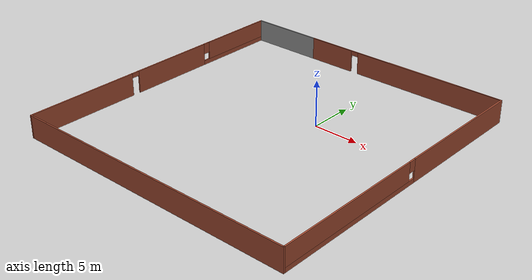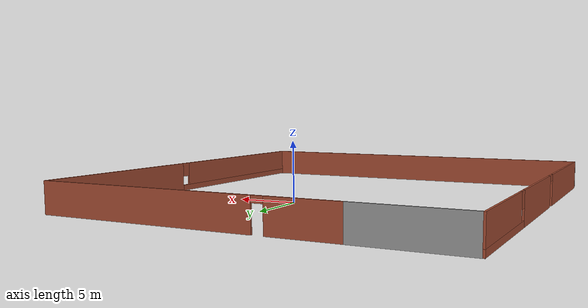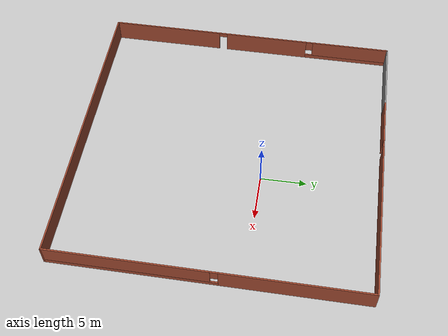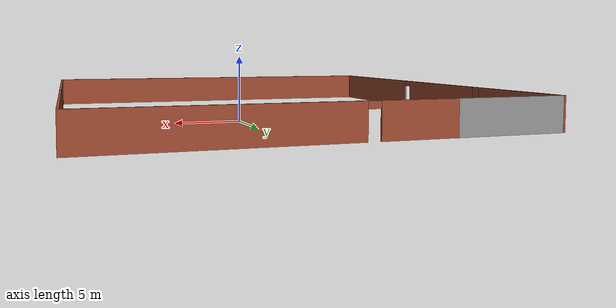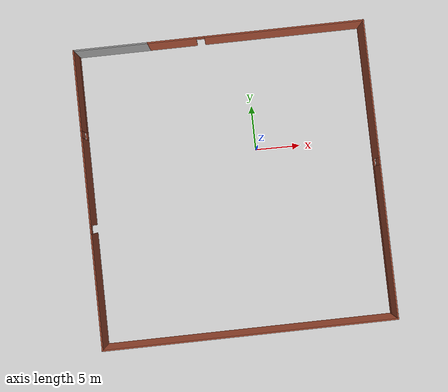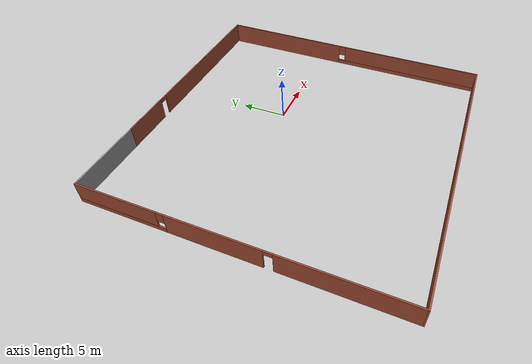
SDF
<?xml version='1.0'?>
<sdf version='1.7'>
  <model name='my_world.world'>
    <pose>-2.87252 -3.63734 0 0 -0 0</pose>
    <link name='Wall_10'>
      <collision name='Wall_10_Collision'>
        <geometry>
          <box>
            <size>32.25 0.15 2.5</size>
          </box>
        </geometry>
        <pose>0 0 1.25 0 -0 0</pose>
      </collision>
      <visual name='Wall_10_Visual'>
        <pose>0 0 1.25 0 -0 0</pose>
        <geometry>
          <box>
            <size>32.25 0.15 2.5</size>
          </box>
        </geometry>
        <material>
          <script>
            <uri>file://media/materials/scripts/gazebo.material</uri>
            <name>Gazebo/Bricks</name>
          </script>
          <ambient>1 1 1 1</ambient>
        </material>
        <meta>
          <layer>0</layer>
        </meta>
      </visual>
      <pose>0 -16.425 0 0 -0 3.14159</pose>
    </link>
    <link name='Wall_11'>
      <pose>-16.05 -0 0 0 -0 1.5708</pose>
      <visual name='Wall_11_Visual_0'>
        <pose>-10.1536 0 1.25 0 -0 0</pose>
        <geometry>
          <box>
            <size>12.6929 0.15 2.5</size>
          </box>
        </geometry>
        <material>
          <script>
            <uri>file://media/materials/scripts/gazebo.material</uri>
            <name>Gazebo/Bricks</name>
          </script>
          <ambient>1 1 1 1</ambient>
        </material>
        <meta>
          <layer>0</layer>
        </meta>
      </visual>
      <collision name='Wall_11_Collision_0'>
        <geometry>
          <box>
            <size>12.6929 0.15 2.5</size>
          </box>
        </geometry>
        <pose>-10.1536 0 1.25 0 -0 0</pose>
      </collision>
      <visual name='Wall_11_Visual_1'>
        <pose>1.91992 0 1.25 0 -0 0</pose>
        <geometry>
          <box>
            <size>9.65406 0.15 2.5</size>
          </box>
        </geometry>
        <material>
          <script>
            <uri>file://media/materials/scripts/gazebo.material</uri>
            <name>Gazebo/Bricks</name>
          </script>
          <ambient>1 1 1 1</ambient>
        </material>
        <meta>
          <layer>0</layer>
        </meta>
      </visual>
      <collision name='Wall_11_Collision_1'>
        <geometry>
          <box>
            <size>9.65406 0.15 2.5</size>
          </box>
        </geometry>
        <pose>1.91992 0 1.25 0 -0 0</pose>
      </collision>
      <visual name='Wall_11_Visual_2'>
        <pose>11.6235 0 0.25 0 -0 0</pose>
        <geometry>
          <box>
            <size>9.75305 0.15 0.5</size>
          </box>
        </geometry>
        <material>
          <script>
            <uri>file://media/materials/scripts/gazebo.material</uri>
            <name>Gazebo/Bricks</name>
          </script>
          <ambient>1 1 1 1</ambient>
        </material>
        <meta>
          <layer>0</layer>
        </meta>
      </visual>
      <collision name='Wall_11_Collision_2'>
        <geometry>
          <box>
            <size>9.75305 0.15 0.5</size>
          </box>
        </geometry>
        <pose>11.6235 0 0.25 0 -0 0</pose>
      </collision>
      <visual name='Wall_11_Visual_3'>
        <pose>12.0235 0 1.5 0 -0 0</pose>
        <geometry>
          <box>
            <size>8.95306 0.15 2</size>
          </box>
        </geometry>
        <material>
          <script>
            <uri>file://media/materials/scripts/gazebo.material</uri>
            <name>Gazebo/Bricks</name>
          </script>
          <ambient>1 1 1 1</ambient>
        </material>
        <meta>
          <layer>0</layer>
        </meta>
      </visual>
      <collision name='Wall_11_Collision_3'>
        <geometry>
          <box>
            <size>8.95306 0.15 2</size>
          </box>
        </geometry>
        <pose>12.0235 0 1.5 0 -0 0</pose>
      </collision>
      <visual name='Wall_11_Visual_4'>
        <pose>7.14694 0 1.9 0 -0 0</pose>
        <geometry>
          <box>
            <size>0.8 0.15 1.2</size>
          </box>
        </geometry>
        <material>
          <script>
            <uri>file://media/materials/scripts/gazebo.material</uri>
            <name>Gazebo/Bricks</name>
          </script>
          <ambient>1 1 1 1</ambient>
        </material>
        <meta>
          <layer>0</layer>
        </meta>
      </visual>
      <collision name='Wall_11_Collision_4'>
        <geometry>
          <box>
            <size>0.8 0.15 1.2</size>
          </box>
        </geometry>
        <pose>7.14694 0 1.9 0 -0 0</pose>
      </collision>
      <visual name='Wall_11_Visual_5'>
        <pose>-3.35711 0 2.25 0 -0 0</pose>
        <geometry>
          <box>
            <size>0.9 0.15 0.5</size>
          </box>
        </geometry>
        <material>
          <script>
            <uri>file://media/materials/scripts/gazebo.material</uri>
            <name>Gazebo/Bricks</name>
          </script>
          <ambient>1 1 1 1</ambient>
        </material>
        <meta>
          <layer>0</layer>
        </meta>
      </visual>
      <collision name='Wall_11_Collision_5'>
        <geometry>
          <box>
            <size>0.9 0.15 0.5</size>
          </box>
        </geometry>
        <pose>-3.35711 0 2.25 0 -0 0</pose>
      </collision>
    </link>
    <link name='Wall_12'>
      <collision name='Wall_12_Collision'>
        <geometry>
          <box>
            <size>8.25 0.15 2.5</size>
          </box>
        </geometry>
        <pose>0 0 1.25 0 -0 0</pose>
      </collision>
      <visual name='Wall_12_Visual'>
        <pose>0 0 1.25 0 -0 0</pose>
        <geometry>
          <box>
            <size>8.25 0.15 2.5</size>
          </box>
        </geometry>
        <material>
          <script>
            <uri>file://media/materials/scripts/gazebo.material</uri>
            <name>Gazebo/Grey</name>
          </script>
          <ambient>1 1 1 1</ambient>
        </material>
        <meta>
          <layer>0</layer>
        </meta>
      </visual>
      <pose>-12 16.425 0 0 -0 0</pose>
    </link>
    <link name='Wall_8'>
      <pose>4.125 16.425 0 0 -0 0</pose>
      <visual name='Wall_8_Visual_0'>
        <pose>-9.29459 0 1.25 0 -0 0</pose>
        <geometry>
          <box>
            <size>5.41081 0.15 2.5</size>
          </box>
        </geometry>
        <material>
          <script>
            <uri>file://media/materials/scripts/gazebo.material</uri>
            <name>Gazebo/Bricks</name>
          </script>
          <ambient>1 1 1 1</ambient>
        </material>
        <meta>
          <layer>0</layer>
        </meta>
      </visual>
      <collision name='Wall_8_Collision_0'>
        <geometry>
          <box>
            <size>5.41081 0.15 2.5</size>
          </box>
        </geometry>
        <pose>-9.29459 0 1.25 0 -0 0</pose>
      </collision>
      <visual name='Wall_8_Visual_1'>
        <pose>3.15541 0 1.25 0 -0 0</pose>
        <geometry>
          <box>
            <size>17.6892 0.15 2.5</size>
          </box>
        </geometry>
        <material>
          <script>
            <uri>file://media/materials/scripts/gazebo.material</uri>
            <name>Gazebo/Bricks</name>
          </script>
          <ambient>1 1 1 1</ambient>
        </material>
        <meta>
          <layer>0</layer>
        </meta>
      </visual>
      <collision name='Wall_8_Collision_1'>
        <geometry>
          <box>
            <size>17.6892 0.15 2.5</size>
          </box>
        </geometry>
        <pose>3.15541 0 1.25 0 -0 0</pose>
      </collision>
      <visual name='Wall_8_Visual_2'>
        <pose>-6.13919 0 2.25 0 -0 0</pose>
        <geometry>
          <box>
            <size>0.9 0.15 0.5</size>
          </box>
        </geometry>
        <material>
          <script>
            <uri>file://media/materials/scripts/gazebo.material</uri>
            <name>Gazebo/Bricks</name>
          </script>
          <ambient>1 1 1 1</ambient>
        </material>
        <meta>
          <layer>0</layer>
        </meta>
      </visual>
      <collision name='Wall_8_Collision_2'>
        <geometry>
          <box>
            <size>0.9 0.15 0.5</size>
          </box>
        </geometry>
        <pose>-6.13919 0 2.25 0 -0 0</pose>
      </collision>
    </link>
    <link name='Wall_9'>
      <pose>16.05 -0 0 0 -0 -1.5708</pose>
      <visual name='Wall_9_Visual_0'>
        <pose>-8.82483 0 1.25 0 -0 0</pose>
        <geometry>
          <box>
            <size>15.3503 0.15 2.5</size>
          </box>
        </geometry>
        <material>
          <script>
            <uri>file://media/materials/scripts/gazebo.material</uri>
            <name>Gazebo/Bricks</name>
          </script>
          <ambient>1 1 1 1</ambient>
        </material>
        <meta>
          <layer>0</layer>
        </meta>
      </visual>
      <collision name='Wall_9_Collision_0'>
        <geometry>
          <box>
            <size>15.3503 0.15 2.5</size>
          </box>
        </geometry>
        <pose>-8.82483 0 1.25 0 -0 0</pose>
      </collision>
      <visual name='Wall_9_Visual_1'>
        <pose>7.67517 0 0.25 0 -0 0</pose>
        <geometry>
          <box>
            <size>17.6497 0.15 0.5</size>
          </box>
        </geometry>
        <material>
          <script>
            <uri>file://media/materials/scripts/gazebo.material</uri>
            <name>Gazebo/Bricks</name>
          </script>
          <ambient>1 1 1 1</ambient>
        </material>
        <meta>
          <layer>0</layer>
        </meta>
      </visual>
      <collision name='Wall_9_Collision_1'>
        <geometry>
          <box>
            <size>17.6497 0.15 0.5</size>
          </box>
        </geometry>
        <pose>7.67517 0 0.25 0 -0 0</pose>
      </collision>
      <visual name='Wall_9_Visual_2'>
        <pose>8.07517 0 1.5 0 -0 0</pose>
        <geometry>
          <box>
            <size>16.8497 0.15 2</size>
          </box>
        </geometry>
        <material>
          <script>
            <uri>file://media/materials/scripts/gazebo.material</uri>
            <name>Gazebo/Bricks</name>
          </script>
          <ambient>1 1 1 1</ambient>
        </material>
        <meta>
          <layer>0</layer>
        </meta>
      </visual>
      <collision name='Wall_9_Collision_2'>
        <geometry>
          <box>
            <size>16.8497 0.15 2</size>
          </box>
        </geometry>
        <pose>8.07517 0 1.5 0 -0 0</pose>
      </collision>
      <visual name='Wall_9_Visual_3'>
        <pose>-0.749659 0 1.9 0 -0 0</pose>
        <geometry>
          <box>
            <size>0.8 0.15 1.2</size>
          </box>
        </geometry>
        <material>
          <script>
            <uri>file://media/materials/scripts/gazebo.material</uri>
            <name>Gazebo/Bricks</name>
          </script>
          <ambient>1 1 1 1</ambient>
        </material>
        <meta>
          <layer>0</layer>
        </meta>
      </visual>
      <collision name='Wall_9_Collision_3'>
        <geometry>
          <box>
            <size>0.8 0.15 1.2</size>
          </box>
        </geometry>
        <pose>-0.749659 0 1.9 0 -0 0</pose>
      </collision>
    </link>
    <static>1</static>
  </model>
</sdf>
